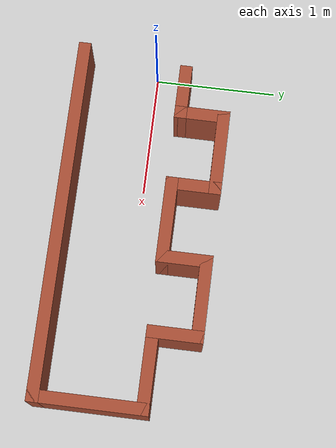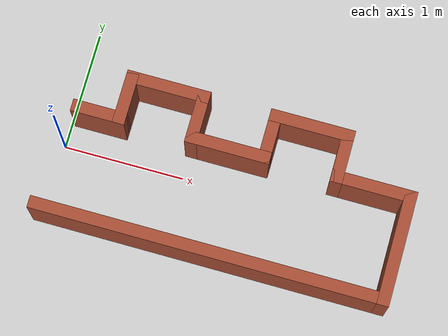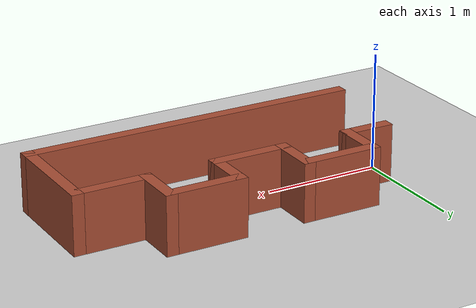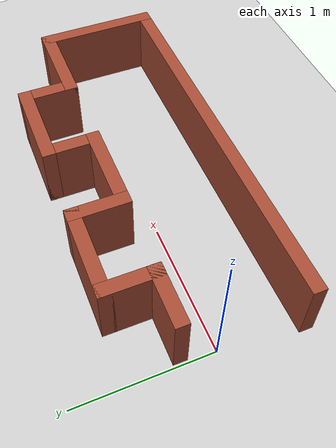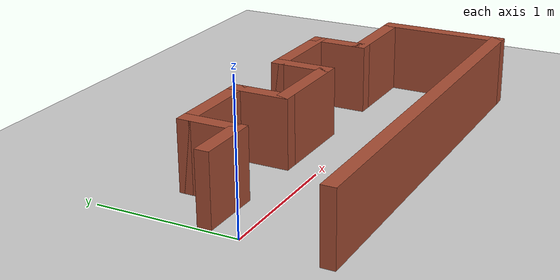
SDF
<sdf version="1.7">
 <world name="default">
  <light name="sun" type="directional">
   <pose>0 0 10 0 -0 0</pose>
   <diffuse>0.8 0.8 0.8 1</diffuse>
   <specular>0.2 0.2 0.2 1</specular>
   <attenuation>
    <range>1000</range>
    <constant>0.9</constant>
    <linear>0.01</linear>
    <quadratic>0.001</quadratic>
   </attenuation>
   <direction>-0.5 0.1 -0.9</direction>
   <spot><inner_angle>0</inner_angle><outer_angle>0</outer_angle><falloff>0</falloff></spot>
  </light>
  <model name="ground_plane">
   <static>1</static>
   <link name="link">
    <collision name="collision">
     <geometry><plane><normal>0 0 1</normal><size>100 100</size></plane></geometry>
     <surface>
      <contact><collide_bitmask>65535</collide_bitmask></contact>
      <friction><ode><mu>100</mu><mu2>50</mu2></ode></friction>
     </surface>
    </collision>
    <visual name="visual">
     <cast_shadows>0</cast_shadows>
     <geometry><plane><normal>0 0 1</normal><size>100 100</size></plane></geometry>
     <material>
      <script><uri>file://media/materials/scripts/gazebo.material</uri><name>Gazebo/Grey</name></script>
     </material>
    </visual>
   </link>
  </model>
  <gravity>0 0 -9.8</gravity>
  <magnetic_field>6e-06 2.3e-05 -4.2e-05</magnetic_field>
  <atmosphere type="adiabatic"/>
  <physics type="ode">
   <max_step_size>0.001</max_step_size>
   <real_time_factor>1</real_time_factor>
   <real_time_update_rate>1000</real_time_update_rate>
  </physics>
  <scene><ambient>0.4 0.4 0.4 1</ambient><background>0.7 0.7 0.7 1</background><shadows>1</shadows></scene>
  <spherical_coordinates>
   <surface_model>EARTH_WGS84</surface_model>
   <latitude_deg>0</latitude_deg>
   <longitude_deg>0</longitude_deg>
   <elevation>0</elevation>
   <heading_deg>0</heading_deg>
  </spherical_coordinates>
  <model name="terkep">
   <pose>1.01676 -0.009383 -0 0 -0 1.56602</pose>
   <link name="Wall_0">
    <collision name="Wall_0_Collision">
     <geometry><box><size>0.45 0.1 0.5</size></box></geometry>
     <pose>0 0 0.25 0 -0 0</pose>
    </collision>
    <visual name="Wall_0_Visual">
     <pose>0 0 0.25 0 -0 0</pose>
     <geometry><box><size>0.45 0.1 0.5</size></box></geometry>
     <material>
      <script><uri>file://media/materials/scripts/gazebo.material</uri><name>Gazebo/Bricks</name></script>
      <ambient>1 1 1 1</ambient>
     </material>
     <meta><layer>0</layer></meta>
    </visual>
    <pose>0.25 0.77 0 0 -0 -1.5708</pose>
   </link>
   <link name="Wall_1">
    <collision name="Wall_1_Collision">
     <geometry><box><size>0.45 0.1 0.5</size></box></geometry>
     <pose>0 0 0.25 0 -0 0</pose>
    </collision>
    <visual name="Wall_1_Visual">
     <pose>0 0 0.25 0 -0 0</pose>
     <geometry><box><size>0.45 0.1 0.5</size></box></geometry>
     <material>
      <script><uri>file://media/materials/scripts/gazebo.material</uri><name>Gazebo/Bricks</name></script>
      <ambient>1 1 1 1</ambient>
     </material>
     <meta><layer>0</layer></meta>
    </visual>
    <pose>0.425 0.595 0 0 -0 0</pose>
   </link>
   <link name="Wall_10">
    <collision name="Wall_10_Collision">
     <geometry><box><size>2.95 0.1 0.5</size></box></geometry>
     <pose>0 0 0.25 0 -0 0</pose>
    </collision>
    <visual name="Wall_10_Visual">
     <pose>0 0 0.25 0 -0 0</pose>
     <geometry><box><size>2.95 0.1 0.5</size></box></geometry>
     <material>
      <script><uri>file://media/materials/scripts/gazebo.material</uri><name>Gazebo/Bricks</name></script>
      <ambient>1 1 1 1</ambient>
     </material>
     <meta><layer>0</layer></meta>
    </visual>
    <pose>-0.6 -0.38 0 0 -0 1.5708</pose>
   </link>
   <link name="Wall_2">
    <collision name="Wall_2_Collision">
     <geometry><box><size>0.7 0.1 0.5</size></box></geometry>
     <pose>0 0 0.25 0 -0 0</pose>
    </collision>
    <visual name="Wall_2_Visual">
     <pose>0 0 0.25 0 -0 0</pose>
     <geometry><box><size>0.7 0.1 0.5</size></box></geometry>
     <material>
      <script><uri>file://media/materials/scripts/gazebo.material</uri><name>Gazebo/Bricks</name></script>
      <ambient>1 1 1 1</ambient>
     </material>
     <meta><layer>0</layer></meta>
    </visual>
    <pose>0.6 0.295 0 0 -0 -1.5708</pose>
   </link>
   <link name="Wall_3">
    <collision name="Wall_3_Collision">
     <geometry><box><size>0.45 0.1 0.5</size></box></geometry>
     <pose>0 0 0.25 0 -0 0</pose>
    </collision>
    <visual name="Wall_3_Visual">
     <pose>0 0 0.25 0 -0 0</pose>
     <geometry><box><size>0.45 0.1 0.5</size></box></geometry>
     <material>
      <script><uri>file://media/materials/scripts/gazebo.material</uri><name>Gazebo/Bricks</name></script>
      <ambient>1 1 1 1</ambient>
     </material>
     <meta><layer>0</layer></meta>
    </visual>
    <pose>0.425 -0.005 0 0 -0 3.14159</pose>
   </link>
   <link name="Wall_4">
    <collision name="Wall_4_Collision">
     <geometry><box><size>0.7 0.1 0.5</size></box></geometry>
     <pose>0 0 0.25 0 -0 0</pose>
    </collision>
    <visual name="Wall_4_Visual">
     <pose>0 0 0.25 0 -0 0</pose>
     <geometry><box><size>0.7 0.1 0.5</size></box></geometry>
     <material>
      <script><uri>file://media/materials/scripts/gazebo.material</uri><name>Gazebo/Bricks</name></script>
      <ambient>1 1 1 1</ambient>
     </material>
     <meta><layer>0</layer></meta>
    </visual>
    <pose>0.25 -0.305 0 0 -0 -1.5708</pose>
   </link>
   <link name="Wall_5">
    <collision name="Wall_5_Collision">
     <geometry><box><size>0.45 0.1 0.5</size></box></geometry>
     <pose>0 0 0.25 0 -0 0</pose>
    </collision>
    <visual name="Wall_5_Visual">
     <pose>0 0 0.25 0 -0 0</pose>
     <geometry><box><size>0.45 0.1 0.5</size></box></geometry>
     <material>
      <script><uri>file://media/materials/scripts/gazebo.material</uri><name>Gazebo/Bricks</name></script>
      <ambient>1 1 1 1</ambient>
     </material>
     <meta><layer>0</layer></meta>
    </visual>
    <pose>0.425 -0.605 0 0 -0 0</pose>
   </link>
   <link name="Wall_6">
    <collision name="Wall_6_Collision">
     <geometry><box><size>0.7 0.1 0.5</size></box></geometry>
     <pose>0 0 0.25 0 -0 0</pose>
    </collision>
    <visual name="Wall_6_Visual">
     <pose>0 0 0.25 0 -0 0</pose>
     <geometry><box><size>0.7 0.1 0.5</size></box></geometry>
     <material>
      <script><uri>file://media/materials/scripts/gazebo.material</uri><name>Gazebo/Bricks</name></script>
      <ambient>1 1 1 1</ambient>
     </material>
     <meta><layer>0</layer></meta>
    </visual>
    <pose>0.6 -0.905 0 0 -0 -1.5708</pose>
   </link>
   <link name="Wall_7">
    <collision name="Wall_7_Collision">
     <geometry><box><size>0.45 0.1 0.5</size></box></geometry>
     <pose>0 0 0.25 0 -0 0</pose>
    </collision>
    <visual name="Wall_7_Visual">
     <pose>0 0 0.25 0 -0 0</pose>
     <geometry><box><size>0.45 0.1 0.5</size></box></geometry>
     <material>
      <script><uri>file://media/materials/scripts/gazebo.material</uri><name>Gazebo/Bricks</name></script>
      <ambient>1 1 1 1</ambient>
     </material>
     <meta><layer>0</layer></meta>
    </visual>
    <pose>0.425 -1.205 0 0 -0 3.14159</pose>
   </link>
   <link name="Wall_8">
    <collision name="Wall_8_Collision">
     <geometry><box><size>0.7 0.1 0.5</size></box></geometry>
     <pose>0 0 0.25 0 -0 0</pose>
    </collision>
    <visual name="Wall_8_Visual">
     <pose>0 0 0.25 0 -0 0</pose>
     <geometry><box><size>0.7 0.1 0.5</size></box></geometry>
     <material>
      <script><uri>file://media/materials/scripts/gazebo.material</uri><name>Gazebo/Bricks</name></script>
      <ambient>1 1 1 1</ambient>
     </material>
     <meta><layer>0</layer></meta>
    </visual>
    <pose>0.25 -1.505 0 0 -0 -1.5708</pose>
   </link>
   <link name="Wall_9">
    <collision name="Wall_9_Collision">
     <geometry><box><size>0.95 0.1 0.5</size></box></geometry>
     <pose>0 0 0.25 0 -0 0</pose>
    </collision>
    <visual name="Wall_9_Visual">
     <pose>0 0 0.25 0 -0 0</pose>
     <geometry><box><size>0.95 0.1 0.5</size></box></geometry>
     <material>
      <script><uri>file://media/materials/scripts/gazebo.material</uri><name>Gazebo/Bricks</name></script>
      <ambient>1 1 1 1</ambient>
     </material>
     <meta><layer>0</layer></meta>
    </visual>
    <pose>-0.175 -1.805 0 0 -0 3.14159</pose>
   </link>
   <static>1</static>
  </model>
 </world>
</sdf>
